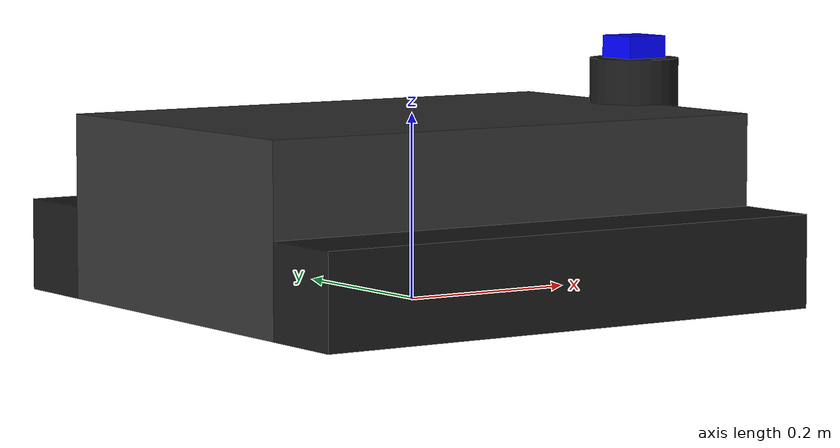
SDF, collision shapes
<?xml version="1.0"?>
<sdf version="1.8">
  <model name="builderbot">
    <static>false</static>
    <self_collide>false</self_collide>

    <!-- Base chassis -->
    <link name="base_link">
      <pose>0 0 0.1 0 0 0</pose>
      <inertial>
        <mass>50.0</mass>
        <inertia>
          <ixx>2.0</ixx>
          <ixy>0</ixy>
          <ixz>0</ixz>
          <iyy>2.0</iyy>
          <iyz>0</iyz>
          <izz>2.0</izz>
        </inertia>
      </inertial>

      <collision name="base_collision">
        <geometry>
          <box>
            <size>0.6 0.4 0.2</size>
          </box>
        </geometry>
      </collision>

      <visual name="base_visual">
        <geometry>
          <mesh>
            <uri>package://models/builderbot/meshes/base_link.stl</uri>
            <scale>0.001 0.001 0.001</scale> <!-- Scale from mm to m -->
          </mesh>
        </geometry>
        <material>
          <ambient>0.2 0.2 0.2 1.0</ambient>
          <diffuse>0.2 0.2 0.2 1.0</diffuse>
        </material>
      </visual>
    </link>

    <!-- Left Track -->
    <link name="left_track">
      <pose>0 0.25 0.05 0 0 0</pose>
      <inertial>
        <mass>5.0</mass>
        <inertia>
          <ixx>0.1</ixx>
          <ixy>0</ixy>
          <ixz>0</ixz>
          <iyy>0.5</iyy>
          <iyz>0</iyz>
          <izz>0.5</izz>
        </inertia>
      </inertial>

      <collision name="left_track_collision">
        <geometry>
          <box>
            <size>0.6 0.1 0.1</size>
          </box>
        </geometry>
        <surface>
          <friction>
            <ode>
              <mu>1.0</mu>
              <mu2>0.7</mu2>
              <fdir1>1 0 0</fdir1>
            </ode>
          </friction>
        </surface>
      </collision>

      <visual name="left_track_visual">
        <geometry>
          <mesh>
            <uri>package://models/builderbot/meshes/left_track.stl</uri>
            <scale>0.001 0.001 0.001</scale>
          </mesh>
        </geometry>
        <material>
          <ambient>0.1 0.1 0.1 1.0</ambient>
          <diffuse>0.1 0.1 0.1 1.0</diffuse>
        </material>
      </visual>
    </link>

    <!-- Right Track -->
    <link name="right_track">
      <pose>0 -0.25 0.05 0 0 0</pose>
      <inertial>
        <mass>5.0</mass>
        <inertia>
          <ixx>0.1</ixx>
          <ixy>0</ixy>
          <ixz>0</ixz>
          <iyy>0.5</iyy>
          <iyz>0</iyz>
          <izz>0.5</izz>
        </inertia>
      </inertial>

      <collision name="right_track_collision">
        <geometry>
          <box>
            <size>0.6 0.1 0.1</size>
          </box>
        </geometry>
        <surface>
          <friction>
            <ode>
              <mu>1.0</mu>
              <mu2>0.7</mu2>
              <fdir1>1 0 0</fdir1>
            </ode>
          </friction>
        </surface>
      </collision>

      <visual name="right_track_visual">
        <geometry>
          <mesh>
            <uri>package://models/builderbot/meshes/right_track.stl</uri>
            <scale>0.001 0.001 0.001</scale>
          </mesh>
        </geometry>
        <material>
          <ambient>0.1 0.1 0.1 1.0</ambient>
          <diffuse>0.1 0.1 0.1 1.0</diffuse>
        </material>
      </visual>
    </link>

    <!-- LIDAR Sensor Link -->
    <link name="lidar_link">
      <pose>0.3 0 0.2 0 0 0</pose>
      <inertial>
        <mass>0.1</mass>
        <inertia>
          <ixx>0.001</ixx>
          <ixy>0</ixy>
          <ixz>0</ixz>
          <iyy>0.001</iyy>
          <iyz>0</iyz>
          <izz>0.001</izz>
        </inertia>
      </inertial>

      <collision name="lidar_collision">
        <geometry>
          <cylinder>
            <radius>0.05</radius>
            <length>0.1</length>
          </cylinder>
        </geometry>
      </collision>

      <visual name="lidar_visual">
        <geometry>
          <cylinder>
            <radius>0.05</radius>
            <length>0.1</length>
          </cylinder>
        </geometry>
        <material>
          <ambient>0.1 0.1 0.1 1.0</ambient>
          <diffuse>0.1 0.1 0.1 1.0</diffuse>
        </material>
      </visual>

      <!-- LIDAR sensor -->
      <sensor name="lidar" type="gpu_lidar">
        <always_on>true</always_on>
        <update_rate>10</update_rate>
        <visualize>true</visualize>
        <lidar>
          <scan>
            <horizontal>
              <samples>360</samples>
              <resolution>1.0</resolution>
              <min_angle>-3.14159</min_angle>
              <max_angle>3.14159</max_angle>
            </horizontal>
            <vertical>
              <samples>1</samples>
              <resolution>1</resolution>
              <min_angle>0</min_angle>
              <max_angle>0</max_angle>
            </vertical>
          </scan>
          <range>
            <min>0.1</min>
            <max>30.0</max>
            <resolution>0.01</resolution>
          </range>
          <noise>
            <type>gaussian</type>
            <mean>0.0</mean>
            <stddev>0.01</stddev>
          </noise>
        </lidar>
      </sensor>
    </link>

    <!-- RGBD Camera Link -->
    <link name="rgbd_camera_link">
      <pose>0.3 0 0.25 0 0 0</pose>
      <inertial>
        <mass>0.05</mass>
        <inertia>
          <ixx>0.0001</ixx>
          <ixy>0</ixy>
          <ixz>0</ixz>
          <iyy>0.0001</iyy>
          <iyz>0</iyz>
          <izz>0.0001</izz>
        </inertia>
      </inertial>

      <collision name="rgbd_camera_collision">
        <geometry>
          <box>
            <size>0.05 0.05 0.05</size>
          </box>
        </geometry>
      </collision>

      <visual name="rgbd_camera_visual">
        <geometry>
          <box>
            <size>0.05 0.05 0.05</size>
          </box>
        </geometry>
        <material>
          <ambient>0.0 0.0 1.0 1.0</ambient>
          <diffuse>0.0 0.0 1.0 1.0</diffuse>
        </material>
      </visual>

      <!-- RGBD Camera sensor -->
      <sensor name="rgbd_camera" type="rgbd_camera">
        <always_on>true</always_on>
        <update_rate>30</update_rate>
        <visualize>true</visualize>
        <camera>
          <horizontal_fov>1.047</horizontal_fov>
          <image>
            <width>640</width>
            <height>480</height>
            <format>R8G8B8</format>
          </image>
          <clip>
            <near>0.1</near>
            <far>30</far>
          </clip>
          <depth_camera>
            <clip>
              <near>0.1</near>
              <far>30.0</far>
            </clip>
          </depth_camera>
          <noise>
            <type>gaussian</type>
            <mean>0.0</mean>
            <stddev>0.007</stddev>
          </noise>
        </camera>
      </sensor>
    </link>

    <!-- IMU Link -->
    <link name="imu_link">
      <pose>0 0 0.15 0 0 0</pose>
      <inertial>
        <mass>0.01</mass>
        <inertia>
          <ixx>0.00001</ixx>
          <ixy>0</ixy>
          <ixz>0</ixz>
          <iyy>0.00001</iyy>
          <iyz>0</iyz>
          <izz>0.00001</izz>
        </inertia>
      </inertial>

      <collision name="imu_collision">
        <geometry>
          <box>
            <size>0.03 0.03 0.03</size>
          </box>
        </geometry>
      </collision>

      <visual name="imu_visual">
        <geometry>
          <box>
            <size>0.03 0.03 0.03</size>
          </box>
        </geometry>
        <material>
          <ambient>1.0 0.0 0.0 1.0</ambient>
          <diffuse>1.0 0.0 0.0 1.0</diffuse>
        </material>
      </visual>

      <!-- IMU sensor -->
      <sensor name="imu" type="imu">
        <always_on>true</always_on>
        <update_rate>100</update_rate>
        <imu>
          <angular_velocity>
            <x>
              <noise type="gaussian">
                <mean>0.0</mean>
                <stddev>0.0002</stddev>
              </noise>
            </x>
            <y>
              <noise type="gaussian">
                <mean>0.0</mean>
                <stddev>0.0002</stddev>
              </noise>
            </y>
            <z>
              <noise type="gaussian">
                <mean>0.0</mean>
                <stddev>0.0002</stddev>
              </noise>
            </z>
          </angular_velocity>
          <linear_acceleration>
            <x>
              <noise type="gaussian">
                <mean>0.0</mean>
                <stddev>0.017</stddev>
              </noise>
            </x>
            <y>
              <noise type="gaussian">
                <mean>0.0</mean>
                <stddev>0.017</stddev>
              </noise>
            </y>
            <z>
              <noise type="gaussian">
                <mean>0.0</mean>
                <stddev>0.017</stddev>
              </noise>
            </z>
          </linear_acceleration>
        </imu>
      </sensor>
    </link>

    <!-- Joints -->
    <joint name="left_track_joint" type="fixed">
      <parent>base_link</parent>
      <child>left_track</child>
    </joint>

    <joint name="right_track_joint" type="fixed">
      <parent>base_link</parent>
      <child>right_track</child>
    </joint>

    <joint name="lidar_joint" type="fixed">
      <parent>base_link</parent>
      <child>lidar_link</child>
    </joint>

    <joint name="rgbd_camera_joint" type="fixed">
      <parent>base_link</parent>
      <child>rgbd_camera_link</child>
    </joint>

    <joint name="imu_joint" type="fixed">
      <parent>base_link</parent>
      <child>imu_link</child>
    </joint>

    <!-- Track Controller Plugin -->
    <plugin filename="libgz-sim-track-controller-system.so"
            name="gz::sim::systems::TrackController">
      <link>left_track</link>
      <link>right_track</link>

      <track_link>
        <link>left_track</link>
        <velocity_topic>left_track_velocity</velocity_topic>
        <center_of_rotation>0 0.25 0.05</center_of_rotation>
        <track_height>0.1</track_height>
        <track_length>0.6</track_length>
        <sprocket_radius>0.05</sprocket_radius>
      </track_link>

      <track_link>
        <link>right_track</link>
        <velocity_topic>right_track_velocity</velocity_topic>
        <center_of_rotation>0 -0.25 0.05</center_of_rotation>
        <track_height>0.1</track_height>
        <track_length>0.6</track_length>
        <sprocket_radius>0.05</sprocket_radius>
      </track_link>

      <odometry_topic>odom</odometry_topic>
      <robot_namespace>builderbot</robot_namespace>
      <tf_topic>tf</tf_topic>
      <odometry_frame>odom</odometry_frame>
      <robot_base_frame>base_link</robot_base_frame>
      <publish_odom_tf>true</publish_odom_tf>
    </plugin>

    <!-- Tracked Vehicle Plugin for velocity control -->
    <plugin filename="libgz-sim-tracked-vehicle-system.so"
            name="gz::sim::systems::TrackedVehicle">
      <debug>false</debug>
      <steering_efficiency>0.5</steering_efficiency>
      <track_separation>0.5</track_separation>
      <max_linear_speed>1.0</max_linear_speed>
      <max_angular_speed>1.0</max_angular_speed>
      <linear_velocity_p_gain>10.0</linear_velocity_p_gain>
      <angular_velocity_p_gain>10.0</angular_velocity_p_gain>

      <left_track>left_track</left_track>
      <right_track>right_track</right_track>

      <track_speed_topic>cmd_vel</track_speed_topic>
      <odometry_topic>odom</odometry_topic>
      <odometry_frame>odom</odometry_frame>
      <robot_base_frame>base_link</robot_base_frame>
      <robot_namespace>builderbot</robot_namespace>
    </plugin>

    <!-- Pose Publisher Plugin -->
    <plugin filename="libgz-sim-pose-publisher-system.so"
            name="gz::sim::systems::PosePublisher">
      <publish_link_pose>true</publish_link_pose>
      <publish_visual_pose>false</publish_visual_pose>
      <publish_collision_pose>false</publish_collision_pose>
      <publish_sensor_pose>false</publish_sensor_pose>
      <publish_model_pose>true</publish_model_pose>
      <publish_nested_model_pose>false</publish_nested_model_pose>
      <update_frequency>50</update_frequency>
    </plugin>

  </model>
</sdf>
